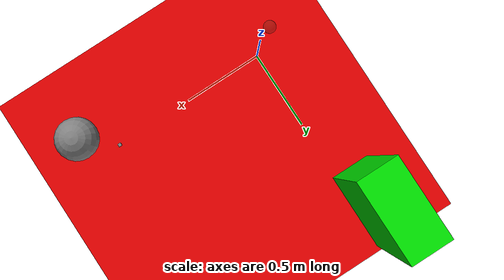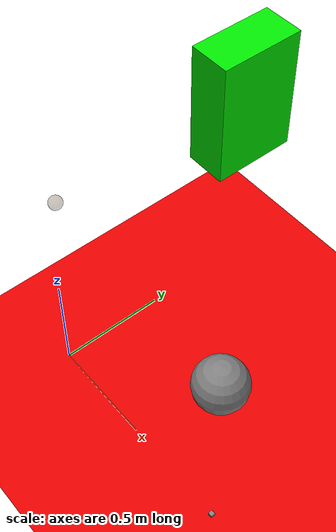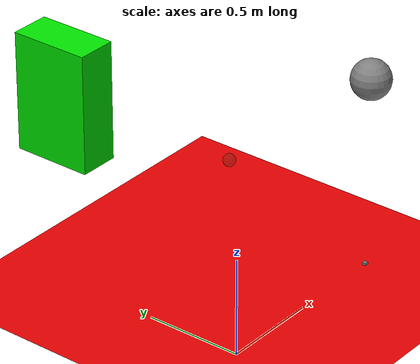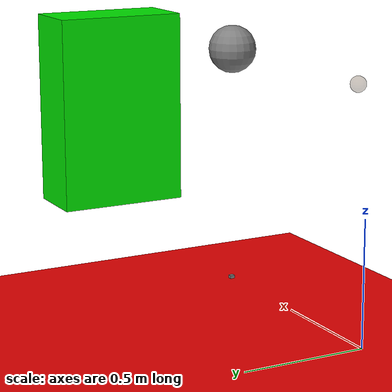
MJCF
<?xml version="1.0" ?>
<mujoco model="MuJoCo Model">
    <compiler angle="radian"/>
    <size njmax="500" nconmax="100"/>
    <worldbody>
        <geom name="geom1" size="1 1 0.1" pos="0.5 0.4 0" type="plane" rgba="0.9 0 0 1"/>
        <camera name="camera1" pos="0 0 0" quat="0.707107 0.707107 0 0" fovy="90"/>
        <light name="light1" pos="0 0 3" dir="0 0 -1" diffuse="0.5 0.5 0.5"/>
        <body name="body1" pos="0 0 1">
            <joint name="joint1" type="free"/>
            <geom name="geom2" size="0.1 0.2 0.3" pos="0 1 0" type="box" rgba="0 0.9 0 1"/>
            <site name="site1" pos="1 0 0" size="0.1"/>
            <site name="sensorsurf" pos="0 0.045 0" size="0.03 0.03 0.03" type="ellipsoid" rgba="0.3 0.2 0.1 0.3"/>
        </body>
        <body name="mocap1" pos="1 0 0" mocap="true">
            <geom size="0.01 0.01 0.01" type="box" contype="0" conaffinity="0"/>
        </body>
    </worldbody>
    <sensor>
        <touch site="sensorsurf" name="touchsensor"/>
    </sensor>
    <keyframe>
        <key time="0.0" qpos="0.0 0.0 1.0 1.0 0.0 0.0 0.0" qvel="0.0 0.0 0.0 0.0 0.0 0.0"/>
    </keyframe>
</mujoco>
